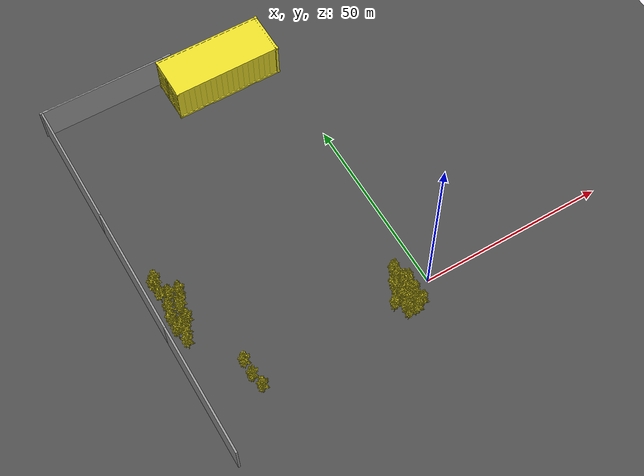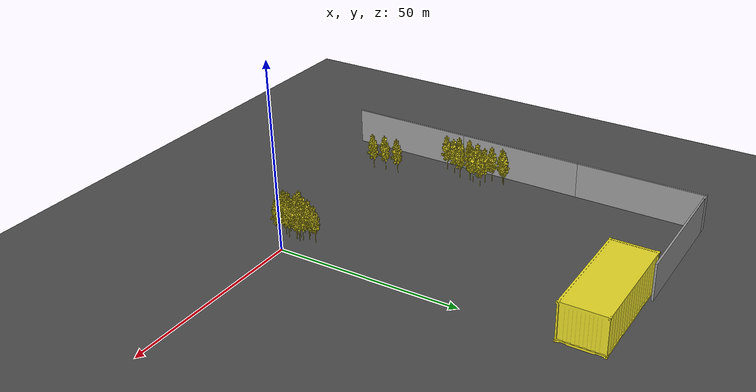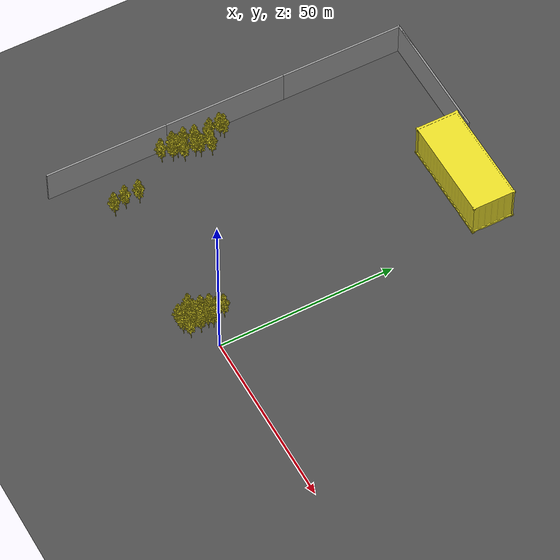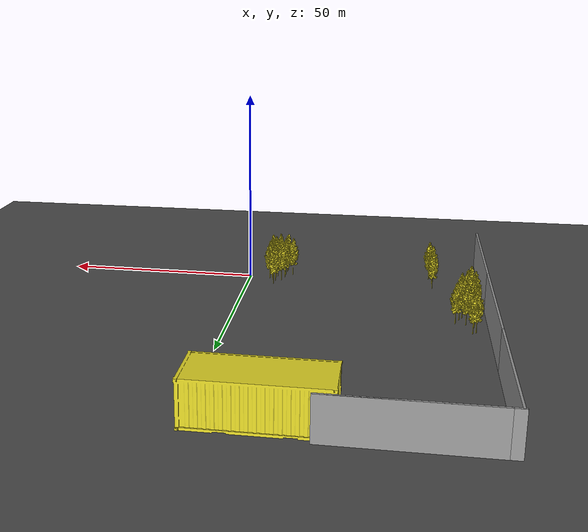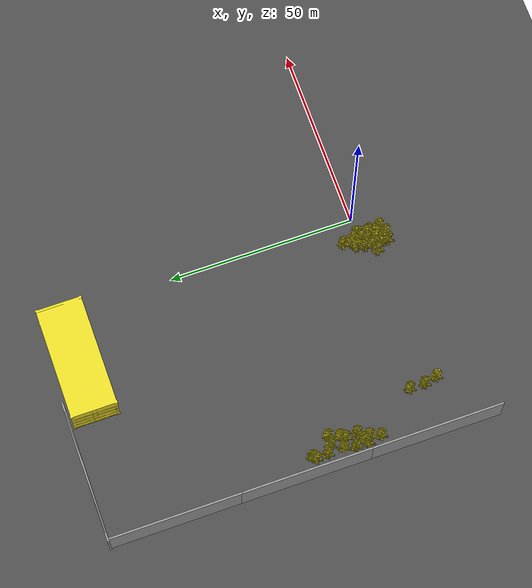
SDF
<sdf version="1.6">
 <world name="default">
  <model name="ground_plane">
   <static>1</static>
   <link name="link">
    <collision name="collision">
     <geometry><plane><normal>0 0 1</normal><size>40000 40000</size></plane></geometry>
     <surface>
      <contact><collide_bitmask>65535</collide_bitmask></contact>
      <friction><ode><mu>100</mu><mu2>50</mu2></ode></friction>
     </surface>
    </collision>
    <visual name="visual">
     <cast_shadows>0</cast_shadows>
     <geometry><plane><normal>0 0 1</normal><size>130 180</size></plane></geometry>
     <material>
      <script><uri>file://media/materials/scripts/gazebo.material</uri><name>Gazebo/Road</name></script>
     </material>
    </visual>
   </link>
  </model>
  <model name="tree0">
   <link name="tree_base">
    <inertial>
     <mass>50</mass>
     <inertia>
      <ixx>6.71748</ixx>
      <ixy>2.148e-05</ixy>
      <ixz>-2.4e-07</ixz>
      <iyy>6.71748</iyy>
      <iyz>-0.171807</iyz>
      <izz>6.71748</izz>
     </inertia>
    </inertial>
    <collision name="tree_base_fixed_joint_lump__collision_collision">
     <geometry><mesh><scale>0.4 0.4 0.6</scale><uri>model://tree/meshes/tree_25k_mesh.dae</uri></mesh></geometry>
    </collision>
    <visual name="tree_base_visual">
     <geometry><mesh><scale>0.4 0.4 0.6</scale><uri>model://tree/meshes/tree_25k_mesh.dae</uri></mesh></geometry>
     <material>
      <script><name>Gazebo/Yellow</name><uri>file://media/materials/scripts/gazebo.material</uri></script>
     </material>
    </visual>
   </link>
   <joint name="joint_tree_base" type="fixed"><child>tree_base</child><parent>world</parent></joint>
   <static>1</static>
   <pose>-11.5 1 0 0 -0 0</pose>
  </model>
  <model name="wall1_clone_clone">
   <link name="link">
    <enable_wind>1</enable_wind>
    <inertial>
     <mass>1</mass>
     <inertia><ixx>1</ixx><ixy>0</ixy><ixz>0</ixz><iyy>1</iyy><iyz>0</iyz><izz>1</izz></inertia>
    </inertial>
    <visual name="visual">
     <cast_shadows>0</cast_shadows>
     <geometry><box><size>35 0.5 10</size></box></geometry>
     <material>
      <script>
       <uri>model://grey_wall/materials/scripts</uri>
       <uri>model://grey_wall/materials/textures</uri>
       <name>vrc/grey_wall</name>
      </script>
      <shader type="pixel"><normal_map>__default__</normal_map></shader>
      <ambient>1 1 1 1</ambient>
      <diffuse>1 1 1 1</diffuse>
      <specular>0 0 0 1</specular>
      <emissive>0 0 0 1</emissive>
     </material>
    </visual>
    <collision name="collision">
     <geometry><box><size>35 0.5 10</size></box></geometry>
     <surface>
      <friction>
       <ode><mu>1</mu><mu2>1</mu2><fdir1>0 0 0</fdir1><slip1>0</slip1><slip2>0</slip2></ode>
       <torsional>
        <coefficient>1</coefficient>
        <patch_radius>0</patch_radius>
        <surface_radius>0</surface_radius>
        <use_patch_radius>1</use_patch_radius>
        <ode><slip>0</slip></ode>
       </torsional>
      </friction>
      <bounce><restitution_coefficient>0</restitution_coefficient><threshold>1e+06</threshold></bounce>
      <contact>
       <collide_without_contact>0</collide_without_contact>
       <collide_without_contact_bitmask>1</collide_without_contact_bitmask>
       <collide_bitmask>1</collide_bitmask>
       <ode>
        <soft_cfm>0</soft_cfm>
        <soft_erp>0.2</soft_erp>
        <kp>1e+13</kp>
        <kd>1</kd>
        <max_vel>0.01</max_vel>
        <min_depth>0</min_depth>
       </ode>
       <bullet>
        <split_impulse>1</split_impulse>
        <split_impulse_penetration_threshold>-0.01</split_impulse_penetration_threshold>
        <soft_cfm>0</soft_cfm>
        <soft_erp>0.2</soft_erp>
        <kp>1e+13</kp>
        <kd>1</kd>
       </bullet>
      </contact>
     </surface>
    </collision>
   </link>
   <static>1</static>
   <pose>-45.0044 86.7474 5 0 -0 0</pose>
  </model>
  <model name="wall1_clone_clone_0">
   <link name="link">
    <enable_wind>1</enable_wind>
    <inertial>
     <mass>1</mass>
     <inertia><ixx>1</ixx><ixy>0</ixy><ixz>0</ixz><iyy>1</iyy><iyz>0</iyz><izz>1</izz></inertia>
    </inertial>
    <visual name="visual">
     <cast_shadows>0</cast_shadows>
     <geometry><box><size>35 0.5 10</size></box></geometry>
     <material>
      <script>
       <uri>model://grey_wall/materials/scripts</uri>
       <uri>model://grey_wall/materials/textures</uri>
       <name>vrc/grey_wall</name>
      </script>
      <shader type="pixel"><normal_map>__default__</normal_map></shader>
      <ambient>1 1 1 1</ambient>
      <diffuse>1 1 1 1</diffuse>
      <specular>0 0 0 1</specular>
      <emissive>0 0 0 1</emissive>
     </material>
    </visual>
    <collision name="collision">
     <geometry><box><size>35 0.5 10</size></box></geometry>
     <surface>
      <friction>
       <ode><mu>1</mu><mu2>1</mu2><fdir1>0 0 0</fdir1><slip1>0</slip1><slip2>0</slip2></ode>
       <torsional>
        <coefficient>1</coefficient>
        <patch_radius>0</patch_radius>
        <surface_radius>0</surface_radius>
        <use_patch_radius>1</use_patch_radius>
        <ode><slip>0</slip></ode>
       </torsional>
      </friction>
      <bounce><restitution_coefficient>0</restitution_coefficient><threshold>1e+06</threshold></bounce>
      <contact>
       <collide_without_contact>0</collide_without_contact>
       <collide_without_contact_bitmask>1</collide_without_contact_bitmask>
       <collide_bitmask>1</collide_bitmask>
       <ode>
        <soft_cfm>0</soft_cfm>
        <soft_erp>0.2</soft_erp>
        <kp>1e+13</kp>
        <kd>1</kd>
        <max_vel>0.01</max_vel>
        <min_depth>0</min_depth>
       </ode>
       <bullet>
        <split_impulse>1</split_impulse>
        <split_impulse_penetration_threshold>-0.01</split_impulse_penetration_threshold>
        <soft_cfm>0</soft_cfm>
        <soft_erp>0.2</soft_erp>
        <kp>1e+13</kp>
        <kd>1</kd>
       </bullet>
      </contact>
     </surface>
    </collision>
   </link>
   <static>1</static>
   <pose>-61.9101 69.2935 5 0 0 -1.57191</pose>
  </model>
  <model name="wall1_clone_clone_0_clone">
   <link name="link">
    <enable_wind>1</enable_wind>
    <inertial>
     <mass>1</mass>
     <inertia><ixx>1</ixx><ixy>0</ixy><ixz>0</ixz><iyy>1</iyy><iyz>0</iyz><izz>1</izz></inertia>
    </inertial>
    <visual name="visual">
     <cast_shadows>0</cast_shadows>
     <geometry><box><size>35 0.5 10</size></box></geometry>
     <material>
      <script>
       <uri>model://grey_wall/materials/scripts</uri>
       <uri>model://grey_wall/materials/textures</uri>
       <name>vrc/grey_wall</name>
      </script>
      <shader type="pixel"><normal_map>__default__</normal_map></shader>
      <ambient>1 1 1 1</ambient>
      <diffuse>1 1 1 1</diffuse>
      <specular>0 0 0 1</specular>
      <emissive>0 0 0 1</emissive>
     </material>
    </visual>
    <collision name="collision">
     <geometry><box><size>35 0.5 10</size></box></geometry>
     <surface>
      <friction>
       <ode><mu>1</mu><mu2>1</mu2><fdir1>0 0 0</fdir1><slip1>0</slip1><slip2>0</slip2></ode>
       <torsional>
        <coefficient>1</coefficient>
        <patch_radius>0</patch_radius>
        <surface_radius>0</surface_radius>
        <use_patch_radius>1</use_patch_radius>
        <ode><slip>0</slip></ode>
       </torsional>
      </friction>
      <bounce><restitution_coefficient>0</restitution_coefficient><threshold>1e+06</threshold></bounce>
      <contact>
       <collide_without_contact>0</collide_without_contact>
       <collide_without_contact_bitmask>1</collide_without_contact_bitmask>
       <collide_bitmask>1</collide_bitmask>
       <ode>
        <soft_cfm>0</soft_cfm>
        <soft_erp>0.2</soft_erp>
        <kp>1e+13</kp>
        <kd>1</kd>
        <max_vel>0.01</max_vel>
        <min_depth>0</min_depth>
       </ode>
       <bullet>
        <split_impulse>1</split_impulse>
        <split_impulse_penetration_threshold>-0.01</split_impulse_penetration_threshold>
        <soft_cfm>0</soft_cfm>
        <soft_erp>0.2</soft_erp>
        <kp>1e+13</kp>
        <kd>1</kd>
       </bullet>
      </contact>
     </surface>
    </collision>
   </link>
   <static>1</static>
   <pose>-61.9495 34.6526 5 0 0 -1.57191</pose>
  </model>
  <model name="wall1_clone_clone_0_clone_0">
   <link name="link">
    <enable_wind>1</enable_wind>
    <inertial>
     <mass>1</mass>
     <inertia><ixx>1</ixx><ixy>0</ixy><ixz>0</ixz><iyy>1</iyy><iyz>0</iyz><izz>1</izz></inertia>
    </inertial>
    <visual name="visual">
     <cast_shadows>0</cast_shadows>
     <geometry><box><size>35 0.5 10</size></box></geometry>
     <material>
      <script>
       <uri>model://grey_wall/materials/scripts</uri>
       <uri>model://grey_wall/materials/textures</uri>
       <name>vrc/grey_wall</name>
      </script>
      <shader type="pixel"><normal_map>__default__</normal_map></shader>
      <ambient>1 1 1 1</ambient>
      <diffuse>1 1 1 1</diffuse>
      <specular>0 0 0 1</specular>
      <emissive>0 0 0 1</emissive>
     </material>
    </visual>
    <collision name="collision">
     <geometry><box><size>35 0.5 10</size></box></geometry>
     <surface>
      <friction>
       <ode><mu>1</mu><mu2>1</mu2><fdir1>0 0 0</fdir1><slip1>0</slip1><slip2>0</slip2></ode>
       <torsional>
        <coefficient>1</coefficient>
        <patch_radius>0</patch_radius>
        <surface_radius>0</surface_radius>
        <use_patch_radius>1</use_patch_radius>
        <ode><slip>0</slip></ode>
       </torsional>
      </friction>
      <bounce><restitution_coefficient>0</restitution_coefficient><threshold>1e+06</threshold></bounce>
      <contact>
       <collide_without_contact>0</collide_without_contact>
       <collide_without_contact_bitmask>1</collide_without_contact_bitmask>
       <collide_bitmask>1</collide_bitmask>
       <ode>
        <soft_cfm>0</soft_cfm>
        <soft_erp>0.2</soft_erp>
        <kp>1e+13</kp>
        <kd>1</kd>
        <max_vel>0.01</max_vel>
        <min_depth>0</min_depth>
       </ode>
       <bullet>
        <split_impulse>1</split_impulse>
        <split_impulse_penetration_threshold>-0.01</split_impulse_penetration_threshold>
        <soft_cfm>0</soft_cfm>
        <soft_erp>0.2</soft_erp>
        <kp>1e+13</kp>
        <kd>1</kd>
       </bullet>
      </contact>
     </surface>
    </collision>
   </link>
   <static>1</static>
   <pose>-61.997 -0.05092 5 0 0 -1.57191</pose>
  </model>
  <model name="wall1_clone_clone_clone_3">
   <link name="link">
    <enable_wind>1</enable_wind>
    <inertial>
     <mass>1</mass>
     <inertia><ixx>1</ixx><ixy>0</ixy><ixz>0</ixz><iyy>1</iyy><iyz>0</iyz><izz>1</izz></inertia>
    </inertial>
    <visual name="visual">
     <cast_shadows>0</cast_shadows>
     <geometry><box><size>35 0.5 10</size></box></geometry>
     <material>
      <script>
       <uri>model://grey_wall/materials/scripts</uri>
       <uri>model://grey_wall/materials/textures</uri>
       <name>vrc/grey_wall</name>
      </script>
      <shader type="pixel"><normal_map>__default__</normal_map></shader>
      <ambient>1 1 1 1</ambient>
      <diffuse>1 1 1 1</diffuse>
      <specular>0 0 0 1</specular>
      <emissive>0 0 0 1</emissive>
     </material>
    </visual>
    <collision name="collision">
     <geometry><box><size>35 0.5 10</size></box></geometry>
     <surface>
      <friction>
       <ode><mu>1</mu><mu2>1</mu2><fdir1>0 0 0</fdir1><slip1>0</slip1><slip2>0</slip2></ode>
       <torsional>
        <coefficient>1</coefficient>
        <patch_radius>0</patch_radius>
        <surface_radius>0</surface_radius>
        <use_patch_radius>1</use_patch_radius>
        <ode><slip>0</slip></ode>
       </torsional>
      </friction>
      <bounce><restitution_coefficient>0</restitution_coefficient><threshold>1e+06</threshold></bounce>
      <contact>
       <collide_without_contact>0</collide_without_contact>
       <collide_without_contact_bitmask>1</collide_without_contact_bitmask>
       <collide_bitmask>1</collide_bitmask>
       <ode>
        <soft_cfm>0</soft_cfm>
        <soft_erp>0.2</soft_erp>
        <kp>1e+13</kp>
        <kd>1</kd>
        <max_vel>0.01</max_vel>
        <min_depth>0</min_depth>
       </ode>
       <bullet>
        <split_impulse>1</split_impulse>
        <split_impulse_penetration_threshold>-0.01</split_impulse_penetration_threshold>
        <soft_cfm>0</soft_cfm>
        <soft_erp>0.2</soft_erp>
        <kp>1e+13</kp>
        <kd>1</kd>
       </bullet>
      </contact>
     </surface>
    </collision>
   </link>
   <static>1</static>
   <pose>-42.6219 86.7691 5 0 -0 0</pose>
  </model>
  <model name="tree0_clone">
   <link name="tree_base">
    <inertial>
     <mass>50</mass>
     <inertia>
      <ixx>6.71748</ixx>
      <ixy>2.148e-05</ixy>
      <ixz>-2.4e-07</ixz>
      <iyy>6.71748</iyy>
      <iyz>-0.171807</iyz>
      <izz>6.71748</izz>
     </inertia>
    </inertial>
    <collision name="tree_base_fixed_joint_lump__collision_collision">
     <geometry><mesh><scale>0.4 0.4 0.6</scale><uri>model://tree/meshes/tree_25k_mesh.dae</uri></mesh></geometry>
    </collision>
    <visual name="tree_base_visual">
     <geometry><mesh><scale>0.4 0.4 0.6</scale><uri>model://tree/meshes/tree_25k_mesh.dae</uri></mesh></geometry>
     <material>
      <script><name>Gazebo/Yellow</name><uri>file://media/materials/scripts/gazebo.material</uri></script>
     </material>
    </visual>
   </link>
   <joint name="joint_tree_base" type="fixed"><child>tree_base</child><parent>world</parent></joint>
   <static>1</static>
   <pose>-8.08772 0.204282 0 0 -0 0</pose>
  </model>
  <model name="tree0_clone_clone_clone_4">
   <link name="tree_base">
    <inertial>
     <mass>50</mass>
     <inertia>
      <ixx>6.71748</ixx>
      <ixy>2.148e-05</ixy>
      <ixz>-2.4e-07</ixz>
      <iyy>6.71748</iyy>
      <iyz>-0.171807</iyz>
      <izz>6.71748</izz>
     </inertia>
    </inertial>
    <collision name="tree_base_fixed_joint_lump__collision_collision">
     <geometry><mesh><scale>0.4 0.4 0.6</scale><uri>model://tree/meshes/tree_25k_mesh.dae</uri></mesh></geometry>
    </collision>
    <visual name="tree_base_visual">
     <geometry><mesh><scale>0.4 0.4 0.6</scale><uri>model://tree/meshes/tree_25k_mesh.dae</uri></mesh></geometry>
     <material>
      <script><name>Gazebo/Yellow</name><uri>file://media/materials/scripts/gazebo.material</uri></script>
     </material>
    </visual>
   </link>
   <joint name="joint_tree_base" type="fixed"><child>tree_base</child><parent>world</parent></joint>
   <static>1</static>
   <pose>-5.56383 5.00842 0 0 -0 0</pose>
  </model>
  <model name="container121_clone">
   <link name="container_base">
    <pose>0 0 0.01 0 -0 0</pose>
    <inertial>
     <mass>500</mass>
     <inertia>
      <ixx>6.71748</ixx>
      <ixy>2.148e-05</ixy>
      <ixz>-2.4e-07</ixz>
      <iyy>6.71748</iyy>
      <iyz>-0.171807</iyz>
      <izz>6.71748</izz>
     </inertia>
    </inertial>
    <collision name="container_base_fixed_joint_lump__collision_collision">
     <geometry>
      <mesh><scale>5 5 4</scale><uri>model://container/meshes/container_mesh_1000.dae</uri></mesh>
     </geometry>
    </collision>
    <visual name="container_base_visual">
     <geometry>
      <mesh><scale>5 5 4</scale><uri>model://container/meshes/container_mesh_1000.dae</uri></mesh>
     </geometry>
     <material>
      <script><name>Gazebo/Yellow</name><uri>file://media/materials/scripts/gazebo.material</uri></script>
     </material>
    </visual>
   </link>
   <joint name="joint_container_base" type="fixed"><child>container_base</child><parent>world</parent></joint>
   <static>1</static>
   <pose>-29.8689 73.6374 0 0 -0 0</pose>
  </model>
  <model name="tree0_clone_clone_clone_1_clone_4_clone_5">
   <link name="tree_base">
    <inertial>
     <mass>50</mass>
     <inertia>
      <ixx>6.71748</ixx>
      <ixy>2.148e-05</ixy>
      <ixz>-2.4e-07</ixz>
      <iyy>6.71748</iyy>
      <iyz>-0.171807</iyz>
      <izz>6.71748</izz>
     </inertia>
    </inertial>
    <collision name="tree_base_fixed_joint_lump__collision_collision">
     <geometry><mesh><scale>0.4 0.4 0.6</scale><uri>model://tree/meshes/tree_25k_mesh.dae</uri></mesh></geometry>
    </collision>
    <visual name="tree_base_visual">
     <geometry><mesh><scale>0.4 0.4 0.6</scale><uri>model://tree/meshes/tree_25k_mesh.dae</uri></mesh></geometry>
     <material>
      <script><name>Gazebo/Yellow</name><uri>file://media/materials/scripts/gazebo.material</uri></script>
     </material>
    </visual>
   </link>
   <joint name="joint_tree_base" type="fixed"><child>tree_base</child><parent>world</parent></joint>
   <static>1</static>
   <pose>-58.3793 17.5772 0 0 -0 0</pose>
  </model>
  <model name="tree0_clone_clone_clone_1_clone_4_clone_6">
   <link name="tree_base">
    <inertial>
     <mass>50</mass>
     <inertia>
      <ixx>6.71748</ixx>
      <ixy>2.148e-05</ixy>
      <ixz>-2.4e-07</ixz>
      <iyy>6.71748</iyy>
      <iyz>-0.171807</iyz>
      <izz>6.71748</izz>
     </inertia>
    </inertial>
    <collision name="tree_base_fixed_joint_lump__collision_collision">
     <geometry><mesh><scale>0.4 0.4 0.6</scale><uri>model://tree/meshes/tree_25k_mesh.dae</uri></mesh></geometry>
    </collision>
    <visual name="tree_base_visual">
     <geometry><mesh><scale>0.4 0.4 0.6</scale><uri>model://tree/meshes/tree_25k_mesh.dae</uri></mesh></geometry>
     <material>
      <script><name>Gazebo/Yellow</name><uri>file://media/materials/scripts/gazebo.material</uri></script>
     </material>
    </visual>
   </link>
   <joint name="joint_tree_base" type="fixed"><child>tree_base</child><parent>world</parent></joint>
   <static>1</static>
   <pose>-58.319 27.4563 0 0 -0 0</pose>
  </model>
  <model name="tree0_clone_clone_clone_1_clone_4_clone_7">
   <link name="tree_base">
    <inertial>
     <mass>50</mass>
     <inertia>
      <ixx>6.71748</ixx>
      <ixy>2.148e-05</ixy>
      <ixz>-2.4e-07</ixz>
      <iyy>6.71748</iyy>
      <iyz>-0.171807</iyz>
      <izz>6.71748</izz>
     </inertia>
    </inertial>
    <collision name="tree_base_fixed_joint_lump__collision_collision">
     <geometry><mesh><scale>0.4 0.4 0.6</scale><uri>model://tree/meshes/tree_25k_mesh.dae</uri></mesh></geometry>
    </collision>
    <visual name="tree_base_visual">
     <geometry><mesh><scale>0.4 0.4 0.6</scale><uri>model://tree/meshes/tree_25k_mesh.dae</uri></mesh></geometry>
     <material>
      <script><name>Gazebo/Yellow</name><uri>file://media/materials/scripts/gazebo.material</uri></script>
     </material>
    </visual>
   </link>
   <joint name="joint_tree_base" type="fixed"><child>tree_base</child><parent>world</parent></joint>
   <static>1</static>
   <pose>-55.7814 23.0274 0 0 -0 0</pose>
  </model>
  <model name="tree0_clone_clone_clone_1_clone_4_clone_8">
   <link name="tree_base">
    <inertial>
     <mass>50</mass>
     <inertia>
      <ixx>6.71748</ixx>
      <ixy>2.148e-05</ixy>
      <ixz>-2.4e-07</ixz>
      <iyy>6.71748</iyy>
      <iyz>-0.171807</iyz>
      <izz>6.71748</izz>
     </inertia>
    </inertial>
    <collision name="tree_base_fixed_joint_lump__collision_collision">
     <geometry><mesh><scale>0.4 0.4 0.6</scale><uri>model://tree/meshes/tree_25k_mesh.dae</uri></mesh></geometry>
    </collision>
    <visual name="tree_base_visual">
     <geometry><mesh><scale>0.4 0.4 0.6</scale><uri>model://tree/meshes/tree_25k_mesh.dae</uri></mesh></geometry>
     <material>
      <script><name>Gazebo/Yellow</name><uri>file://media/materials/scripts/gazebo.material</uri></script>
     </material>
    </visual>
   </link>
   <joint name="joint_tree_base" type="fixed"><child>tree_base</child><parent>world</parent></joint>
   <static>1</static>
   <pose>-54.1283 30.2584 0 0 -0 0</pose>
  </model>
  <model name="tree0_clone_clone_clone_1_clone_4_clone_9">
   <link name="tree_base">
    <inertial>
     <mass>50</mass>
     <inertia>
      <ixx>6.71748</ixx>
      <ixy>2.148e-05</ixy>
      <ixz>-2.4e-07</ixz>
      <iyy>6.71748</iyy>
      <iyz>-0.171807</iyz>
      <izz>6.71748</izz>
     </inertia>
    </inertial>
    <collision name="tree_base_fixed_joint_lump__collision_collision">
     <geometry><mesh><scale>0.4 0.4 0.6</scale><uri>model://tree/meshes/tree_25k_mesh.dae</uri></mesh></geometry>
    </collision>
    <visual name="tree_base_visual">
     <geometry><mesh><scale>0.4 0.4 0.6</scale><uri>model://tree/meshes/tree_25k_mesh.dae</uri></mesh></geometry>
     <material>
      <script><name>Gazebo/Yellow</name><uri>file://media/materials/scripts/gazebo.material</uri></script>
     </material>
    </visual>
   </link>
   <joint name="joint_tree_base" type="fixed"><child>tree_base</child><parent>world</parent></joint>
   <static>1</static>
   <pose>-57.8567 35.7583 0 0 -0 0</pose>
  </model>
  <model name="tree0_clone_clone_clone_1_clone_4_clone_10">
   <link name="tree_base">
    <inertial>
     <mass>50</mass>
     <inertia>
      <ixx>6.71748</ixx>
      <ixy>2.148e-05</ixy>
      <ixz>-2.4e-07</ixz>
      <iyy>6.71748</iyy>
      <iyz>-0.171807</iyz>
      <izz>6.71748</izz>
     </inertia>
    </inertial>
    <collision name="tree_base_fixed_joint_lump__collision_collision">
     <geometry><mesh><scale>0.4 0.4 0.6</scale><uri>model://tree/meshes/tree_25k_mesh.dae</uri></mesh></geometry>
    </collision>
    <visual name="tree_base_visual">
     <geometry><mesh><scale>0.4 0.4 0.6</scale><uri>model://tree/meshes/tree_25k_mesh.dae</uri></mesh></geometry>
     <material>
      <script><name>Gazebo/Yellow</name><uri>file://media/materials/scripts/gazebo.material</uri></script>
     </material>
    </visual>
   </link>
   <joint name="joint_tree_base" type="fixed"><child>tree_base</child><parent>world</parent></joint>
   <static>1</static>
   <pose>-7.0481 8.87909 0 0 -0 0</pose>
  </model>
  <model name="tree0_clone_clone_clone_0_clone_clone">
   <link name="tree_base">
    <inertial>
     <mass>50</mass>
     <inertia>
      <ixx>6.71748</ixx>
      <ixy>2.148e-05</ixy>
      <ixz>-2.4e-07</ixz>
      <iyy>6.71748</iyy>
      <iyz>-0.171807</iyz>
      <izz>6.71748</izz>
     </inertia>
    </inertial>
    <collision name="tree_base_fixed_joint_lump__collision_collision">
     <geometry><mesh><scale>0.4 0.4 0.6</scale><uri>model://tree/meshes/tree_25k_mesh.dae</uri></mesh></geometry>
    </collision>
    <visual name="tree_base_visual">
     <geometry><mesh><scale>0.4 0.4 0.6</scale><uri>model://tree/meshes/tree_25k_mesh.dae</uri></mesh></geometry>
     <material>
      <script><name>Gazebo/Yellow</name><uri>file://media/materials/scripts/gazebo.material</uri></script>
     </material>
    </visual>
   </link>
   <joint name="joint_tree_base" type="fixed"><child>tree_base</child><parent>world</parent></joint>
   <static>1</static>
   <pose>-49.3974 6.45253 0 0 -0 0</pose>
  </model>
  <model name="tree0_clone_clone_clone_0_clone_clone_0">
   <link name="tree_base">
    <inertial>
     <mass>50</mass>
     <inertia>
      <ixx>6.71748</ixx>
      <ixy>2.148e-05</ixy>
      <ixz>-2.4e-07</ixz>
      <iyy>6.71748</iyy>
      <iyz>-0.171807</iyz>
      <izz>6.71748</izz>
     </inertia>
    </inertial>
    <collision name="tree_base_fixed_joint_lump__collision_collision">
     <geometry><mesh><scale>0.4 0.4 0.6</scale><uri>model://tree/meshes/tree_25k_mesh.dae</uri></mesh></geometry>
    </collision>
    <visual name="tree_base_visual">
     <geometry><mesh><scale>0.4 0.4 0.6</scale><uri>model://tree/meshes/tree_25k_mesh.dae</uri></mesh></geometry>
     <material>
      <script><name>Gazebo/Yellow</name><uri>file://media/materials/scripts/gazebo.material</uri></script>
     </material>
    </visual>
   </link>
   <joint name="joint_tree_base" type="fixed"><child>tree_base</child><parent>world</parent></joint>
   <static>1</static>
   <pose>-49.4179 2.45019 0 0 -0 0</pose>
  </model>
  <model name="tree0_clone_clone_clone_0_clone_clone_1">
   <link name="tree_base">
    <inertial>
     <mass>50</mass>
     <inertia>
      <ixx>6.71748</ixx>
      <ixy>2.148e-05</ixy>
      <ixz>-2.4e-07</ixz>
      <iyy>6.71748</iyy>
      <iyz>-0.171807</iyz>
      <izz>6.71748</izz>
     </inertia>
    </inertial>
    <collision name="tree_base_fixed_joint_lump__collision_collision">
     <geometry><mesh><scale>0.4 0.4 0.6</scale><uri>model://tree/meshes/tree_25k_mesh.dae</uri></mesh></geometry>
    </collision>
    <visual name="tree_base_visual">
     <geometry><mesh><scale>0.4 0.4 0.6</scale><uri>model://tree/meshes/tree_25k_mesh.dae</uri></mesh></geometry>
     <material>
      <script><name>Gazebo/Yellow</name><uri>file://media/materials/scripts/gazebo.material</uri></script>
     </material>
    </visual>
   </link>
   <joint name="joint_tree_base" type="fixed"><child>tree_base</child><parent>world</parent></joint>
   <static>1</static>
   <pose>-48.666 -1.01178 0 0 -0 0</pose>
  </model>
  <model name="tree0_clone_1">
   <link name="tree_base">
    <inertial>
     <mass>50</mass>
     <inertia>
      <ixx>6.71748</ixx>
      <ixy>2.148e-05</ixy>
      <ixz>-2.4e-07</ixz>
      <iyy>6.71748</iyy>
      <iyz>-0.171807</iyz>
      <izz>6.71748</izz>
     </inertia>
    </inertial>
    <collision name="tree_base_fixed_joint_lump__collision_collision">
     <geometry><mesh><scale>0.4 0.4 0.6</scale><uri>model://tree/meshes/tree_25k_mesh.dae</uri></mesh></geometry>
    </collision>
    <visual name="tree_base_visual">
     <geometry><mesh><scale>0.4 0.4 0.6</scale><uri>model://tree/meshes/tree_25k_mesh.dae</uri></mesh></geometry>
     <material>
      <script><name>Gazebo/Yellow</name><uri>file://media/materials/scripts/gazebo.material</uri></script>
     </material>
    </visual>
   </link>
   <joint name="joint_tree_base" type="fixed"><child>tree_base</child><parent>world</parent></joint>
   <static>1</static>
   <pose>-9.77325 -2.51959 0 0 -0 0</pose>
  </model>
  <model name="tree0_clone_2">
   <link name="tree_base">
    <inertial>
     <mass>50</mass>
     <inertia>
      <ixx>6.71748</ixx>
      <ixy>2.148e-05</ixy>
      <ixz>-2.4e-07</ixz>
      <iyy>6.71748</iyy>
      <iyz>-0.171807</iyz>
      <izz>6.71748</izz>
     </inertia>
    </inertial>
    <collision name="tree_base_fixed_joint_lump__collision_collision">
     <geometry><mesh><scale>0.4 0.4 0.6</scale><uri>model://tree/meshes/tree_25k_mesh.dae</uri></mesh></geometry>
    </collision>
    <visual name="tree_base_visual">
     <geometry><mesh><scale>0.4 0.4 0.6</scale><uri>model://tree/meshes/tree_25k_mesh.dae</uri></mesh></geometry>
     <material>
      <script><name>Gazebo/Yellow</name><uri>file://media/materials/scripts/gazebo.material</uri></script>
     </material>
    </visual>
   </link>
   <joint name="joint_tree_base" type="fixed"><child>tree_base</child><parent>world</parent></joint>
   <static>1</static>
   <pose>-7.57946 -2.56982 0 0 -0 0</pose>
  </model>
  <model name="tree0_clone_3">
   <link name="tree_base">
    <inertial>
     <mass>50</mass>
     <inertia>
      <ixx>6.71748</ixx>
      <ixy>2.148e-05</ixy>
      <ixz>-2.4e-07</ixz>
      <iyy>6.71748</iyy>
      <iyz>-0.171807</iyz>
      <izz>6.71748</izz>
     </inertia>
    </inertial>
    <collision name="tree_base_fixed_joint_lump__collision_collision">
     <geometry><mesh><scale>0.4 0.4 0.6</scale><uri>model://tree/meshes/tree_25k_mesh.dae</uri></mesh></geometry>
    </collision>
    <visual name="tree_base_visual">
     <geometry><mesh><scale>0.4 0.4 0.6</scale><uri>model://tree/meshes/tree_25k_mesh.dae</uri></mesh></geometry>
     <material>
      <script><name>Gazebo/Yellow</name><uri>file://media/materials/scripts/gazebo.material</uri></script>
     </material>
    </visual>
   </link>
   <joint name="joint_tree_base" type="fixed"><child>tree_base</child><parent>world</parent></joint>
   <static>1</static>
   <pose>-5.53581 -1.4938 0 0 -0 0</pose>
  </model>
  <model name="tree0_clone_4">
   <link name="tree_base">
    <inertial>
     <mass>50</mass>
     <inertia>
      <ixx>6.71748</ixx>
      <ixy>2.148e-05</ixy>
      <ixz>-2.4e-07</ixz>
      <iyy>6.71748</iyy>
      <iyz>-0.171807</iyz>
      <izz>6.71748</izz>
     </inertia>
    </inertial>
    <collision name="tree_base_fixed_joint_lump__collision_collision">
     <geometry><mesh><scale>0.4 0.4 0.6</scale><uri>model://tree/meshes/tree_25k_mesh.dae</uri></mesh></geometry>
    </collision>
    <visual name="tree_base_visual">
     <geometry><mesh><scale>0.4 0.4 0.6</scale><uri>model://tree/meshes/tree_25k_mesh.dae</uri></mesh></geometry>
     <material>
      <script><name>Gazebo/Yellow</name><uri>file://media/materials/scripts/gazebo.material</uri></script>
     </material>
    </visual>
   </link>
   <joint name="joint_tree_base" type="fixed"><child>tree_base</child><parent>world</parent></joint>
   <static>1</static>
   <pose>-9.60694 -1.0583 0 0 -0 0</pose>
  </model>
  <model name="tree0_clone_5">
   <link name="tree_base">
    <inertial>
     <mass>50</mass>
     <inertia>
      <ixx>6.71748</ixx>
      <ixy>2.148e-05</ixy>
      <ixz>-2.4e-07</ixz>
      <iyy>6.71748</iyy>
      <iyz>-0.171807</iyz>
      <izz>6.71748</izz>
     </inertia>
    </inertial>
    <collision name="tree_base_fixed_joint_lump__collision_collision">
     <geometry><mesh><scale>0.4 0.4 0.6</scale><uri>model://tree/meshes/tree_25k_mesh.dae</uri></mesh></geometry>
    </collision>
    <visual name="tree_base_visual">
     <geometry><mesh><scale>0.4 0.4 0.6</scale><uri>model://tree/meshes/tree_25k_mesh.dae</uri></mesh></geometry>
     <material>
      <script><name>Gazebo/Yellow</name><uri>file://media/materials/scripts/gazebo.material</uri></script>
     </material>
    </visual>
   </link>
   <joint name="joint_tree_base" type="fixed"><child>tree_base</child><parent>world</parent></joint>
   <static>1</static>
   <pose>-9.47046 1.37966 0 0 -0 0</pose>
  </model>
  <model name="tree0_clone_6">
   <link name="tree_base">
    <inertial>
     <mass>50</mass>
     <inertia>
      <ixx>6.71748</ixx>
      <ixy>2.148e-05</ixy>
      <ixz>-2.4e-07</ixz>
      <iyy>6.71748</iyy>
      <iyz>-0.171807</iyz>
      <izz>6.71748</izz>
     </inertia>
    </inertial>
    <collision name="tree_base_fixed_joint_lump__collision_collision">
     <geometry><mesh><scale>0.4 0.4 0.6</scale><uri>model://tree/meshes/tree_25k_mesh.dae</uri></mesh></geometry>
    </collision>
    <visual name="tree_base_visual">
     <geometry><mesh><scale>0.4 0.4 0.6</scale><uri>model://tree/meshes/tree_25k_mesh.dae</uri></mesh></geometry>
     <material>
      <script><name>Gazebo/Yellow</name><uri>file://media/materials/scripts/gazebo.material</uri></script>
     </material>
    </visual>
   </link>
   <joint name="joint_tree_base" type="fixed"><child>tree_base</child><parent>world</parent></joint>
   <static>1</static>
   <pose>-6.65964 -0.007236 0 0 -0 0</pose>
  </model>
  <model name="tree0_clone_8">
   <link name="tree_base">
    <inertial>
     <mass>50</mass>
     <inertia>
      <ixx>6.71748</ixx>
      <ixy>2.148e-05</ixy>
      <ixz>-2.4e-07</ixz>
      <iyy>6.71748</iyy>
      <iyz>-0.171807</iyz>
      <izz>6.71748</izz>
     </inertia>
    </inertial>
    <collision name="tree_base_fixed_joint_lump__collision_collision">
     <geometry><mesh><scale>0.4 0.4 0.6</scale><uri>model://tree/meshes/tree_25k_mesh.dae</uri></mesh></geometry>
    </collision>
    <visual name="tree_base_visual">
     <geometry><mesh><scale>0.4 0.4 0.6</scale><uri>model://tree/meshes/tree_25k_mesh.dae</uri></mesh></geometry>
     <material>
      <script><name>Gazebo/Yellow</name><uri>file://media/materials/scripts/gazebo.material</uri></script>
     </material>
    </visual>
   </link>
   <joint name="joint_tree_base" type="fixed"><child>tree_base</child><parent>world</parent></joint>
   <static>1</static>
   <pose>-5.77873 1.5854 0 0 -0 0</pose>
  </model>
  <model name="tree0_clone_9">
   <link name="tree_base">
    <inertial>
     <mass>50</mass>
     <inertia>
      <ixx>6.71748</ixx>
      <ixy>2.148e-05</ixy>
      <ixz>-2.4e-07</ixz>
      <iyy>6.71748</iyy>
      <iyz>-0.171807</iyz>
      <izz>6.71748</izz>
     </inertia>
    </inertial>
    <collision name="tree_base_fixed_joint_lump__collision_collision">
     <geometry><mesh><scale>0.4 0.4 0.6</scale><uri>model://tree/meshes/tree_25k_mesh.dae</uri></mesh></geometry>
    </collision>
    <visual name="tree_base_visual">
     <geometry><mesh><scale>0.4 0.4 0.6</scale><uri>model://tree/meshes/tree_25k_mesh.dae</uri></mesh></geometry>
     <material>
      <script><name>Gazebo/Yellow</name><uri>file://media/materials/scripts/gazebo.material</uri></script>
     </material>
    </visual>
   </link>
   <joint name="joint_tree_base" type="fixed"><child>tree_base</child><parent>world</parent></joint>
   <static>1</static>
   <pose>-7.49225 2.77874 0 0 -0 0</pose>
  </model>
  <model name="tree0_clone_10">
   <link name="tree_base">
    <inertial>
     <mass>50</mass>
     <inertia>
      <ixx>6.71748</ixx>
      <ixy>2.148e-05</ixy>
      <ixz>-2.4e-07</ixz>
      <iyy>6.71748</iyy>
      <iyz>-0.171807</iyz>
      <izz>6.71748</izz>
     </inertia>
    </inertial>
    <collision name="tree_base_fixed_joint_lump__collision_collision">
     <geometry><mesh><scale>0.4 0.4 0.6</scale><uri>model://tree/meshes/tree_25k_mesh.dae</uri></mesh></geometry>
    </collision>
    <visual name="tree_base_visual">
     <geometry><mesh><scale>0.4 0.4 0.6</scale><uri>model://tree/meshes/tree_25k_mesh.dae</uri></mesh></geometry>
     <material>
      <script><name>Gazebo/Yellow</name><uri>file://media/materials/scripts/gazebo.material</uri></script>
     </material>
    </visual>
   </link>
   <joint name="joint_tree_base" type="fixed"><child>tree_base</child><parent>world</parent></joint>
   <static>1</static>
   <pose>-9.53012 3.55823 0 0 -0 0</pose>
  </model>
  <model name="tree0_clone_11">
   <link name="tree_base">
    <inertial>
     <mass>50</mass>
     <inertia>
      <ixx>6.71748</ixx>
      <ixy>2.148e-05</ixy>
      <ixz>-2.4e-07</ixz>
      <iyy>6.71748</iyy>
      <iyz>-0.171807</iyz>
      <izz>6.71748</izz>
     </inertia>
    </inertial>
    <collision name="tree_base_fixed_joint_lump__collision_collision">
     <geometry><mesh><scale>0.4 0.4 0.6</scale><uri>model://tree/meshes/tree_25k_mesh.dae</uri></mesh></geometry>
    </collision>
    <visual name="tree_base_visual">
     <geometry><mesh><scale>0.4 0.4 0.6</scale><uri>model://tree/meshes/tree_25k_mesh.dae</uri></mesh></geometry>
     <material>
      <script><name>Gazebo/Yellow</name><uri>file://media/materials/scripts/gazebo.material</uri></script>
     </material>
    </visual>
   </link>
   <joint name="joint_tree_base" type="fixed"><child>tree_base</child><parent>world</parent></joint>
   <static>1</static>
   <pose>-7.14311 4.11976 0 0 -0 0</pose>
  </model>
  <model name="tree0_clone_13">
   <link name="tree_base">
    <inertial>
     <mass>50</mass>
     <inertia>
      <ixx>6.71748</ixx>
      <ixy>2.148e-05</ixy>
      <ixz>-2.4e-07</ixz>
      <iyy>6.71748</iyy>
      <iyz>-0.171807</iyz>
      <izz>6.71748</izz>
     </inertia>
    </inertial>
    <collision name="tree_base_fixed_joint_lump__collision_collision">
     <geometry><mesh><scale>0.4 0.4 0.6</scale><uri>model://tree/meshes/tree_25k_mesh.dae</uri></mesh></geometry>
    </collision>
    <visual name="tree_base_visual">
     <geometry><mesh><scale>0.4 0.4 0.6</scale><uri>model://tree/meshes/tree_25k_mesh.dae</uri></mesh></geometry>
     <material>
      <script><name>Gazebo/Yellow</name><uri>file://media/materials/scripts/gazebo.material</uri></script>
     </material>
    </visual>
   </link>
   <joint name="joint_tree_base" type="fixed"><child>tree_base</child><parent>world</parent></joint>
   <static>1</static>
   <pose>-6.41597 5.51046 0 0 -0 0</pose>
  </model>
  <model name="tree0_clone_14">
   <link name="tree_base">
    <inertial>
     <mass>50</mass>
     <inertia>
      <ixx>6.71748</ixx>
      <ixy>2.148e-05</ixy>
      <ixz>-2.4e-07</ixz>
      <iyy>6.71748</iyy>
      <iyz>-0.171807</iyz>
      <izz>6.71748</izz>
     </inertia>
    </inertial>
    <collision name="tree_base_fixed_joint_lump__collision_collision">
     <geometry><mesh><scale>0.4 0.4 0.6</scale><uri>model://tree/meshes/tree_25k_mesh.dae</uri></mesh></geometry>
    </collision>
    <visual name="tree_base_visual">
     <geometry><mesh><scale>0.4 0.4 0.6</scale><uri>model://tree/meshes/tree_25k_mesh.dae</uri></mesh></geometry>
     <material>
      <script><name>Gazebo/Yellow</name><uri>file://media/materials/scripts/gazebo.material</uri></script>
     </material>
    </visual>
   </link>
   <joint name="joint_tree_base" type="fixed"><child>tree_base</child><parent>world</parent></joint>
   <static>1</static>
   <pose>-7.32348 6.76258 0 0 -0 0</pose>
  </model>
  <model name="tree0_clone_15">
   <link name="tree_base">
    <inertial>
     <mass>50</mass>
     <inertia>
      <ixx>6.71748</ixx>
      <ixy>2.148e-05</ixy>
      <ixz>-2.4e-07</ixz>
      <iyy>6.71748</iyy>
      <iyz>-0.171807</iyz>
      <izz>6.71748</izz>
     </inertia>
    </inertial>
    <collision name="tree_base_fixed_joint_lump__collision_collision">
     <geometry><mesh><scale>0.4 0.4 0.6</scale><uri>model://tree/meshes/tree_25k_mesh.dae</uri></mesh></geometry>
    </collision>
    <visual name="tree_base_visual">
     <geometry><mesh><scale>0.4 0.4 0.6</scale><uri>model://tree/meshes/tree_25k_mesh.dae</uri></mesh></geometry>
     <material>
      <script><name>Gazebo/Yellow</name><uri>file://media/materials/scripts/gazebo.material</uri></script>
     </material>
    </visual>
   </link>
   <joint name="joint_tree_base" type="fixed"><child>tree_base</child><parent>world</parent></joint>
   <static>1</static>
   <pose>-8.89065 5.75828 0 0 -0 0</pose>
  </model>
  <model name="tree0_clone_20">
   <link name="tree_base">
    <inertial>
     <mass>50</mass>
     <inertia>
      <ixx>6.71748</ixx>
      <ixy>2.148e-05</ixy>
      <ixz>-2.4e-07</ixz>
      <iyy>6.71748</iyy>
      <iyz>-0.171807</iyz>
      <izz>6.71748</izz>
     </inertia>
    </inertial>
    <collision name="tree_base_fixed_joint_lump__collision_collision">
     <geometry><mesh><scale>0.4 0.4 0.6</scale><uri>model://tree/meshes/tree_25k_mesh.dae</uri></mesh></geometry>
    </collision>
    <visual name="tree_base_visual">
     <geometry><mesh><scale>0.4 0.4 0.6</scale><uri>model://tree/meshes/tree_25k_mesh.dae</uri></mesh></geometry>
     <material>
      <script><name>Gazebo/Yellow</name><uri>file://media/materials/scripts/gazebo.material</uri></script>
     </material>
    </visual>
   </link>
   <joint name="joint_tree_base" type="fixed"><child>tree_base</child><parent>world</parent></joint>
   <static>1</static>
   <pose>-6.06275 3.79252 0 0 -0 0</pose>
  </model>
  <model name="tree0_clone_clone_clone_1_clone_4_clone_3_clone_13">
   <link name="tree_base">
    <inertial>
     <mass>50</mass>
     <inertia>
      <ixx>6.71748</ixx>
      <ixy>2.148e-05</ixy>
      <ixz>-2.4e-07</ixz>
      <iyy>6.71748</iyy>
      <iyz>-0.171807</iyz>
      <izz>6.71748</izz>
     </inertia>
    </inertial>
    <collision name="tree_base_fixed_joint_lump__collision_collision">
     <geometry><mesh><scale>0.4 0.4 0.6</scale><uri>model://tree/meshes/tree_25k_mesh.dae</uri></mesh></geometry>
    </collision>
    <visual name="tree_base_visual">
     <geometry><mesh><scale>0.4 0.4 0.6</scale><uri>model://tree/meshes/tree_25k_mesh.dae</uri></mesh></geometry>
     <material>
      <script><name>Gazebo/Yellow</name><uri>file://media/materials/scripts/gazebo.material</uri></script>
     </material>
    </visual>
   </link>
   <joint name="joint_tree_base" type="fixed"><child>tree_base</child><parent>world</parent></joint>
   <static>1</static>
   <pose>-59.1353 21.2307 0 0 -0 0</pose>
  </model>
  <model name="tree0_clone_clone_clone_1_clone_4_clone_3_clone_14">
   <link name="tree_base">
    <inertial>
     <mass>50</mass>
     <inertia>
      <ixx>6.71748</ixx>
      <ixy>2.148e-05</ixy>
      <ixz>-2.4e-07</ixz>
      <iyy>6.71748</iyy>
      <iyz>-0.171807</iyz>
      <izz>6.71748</izz>
     </inertia>
    </inertial>
    <collision name="tree_base_fixed_joint_lump__collision_collision">
     <geometry><mesh><scale>0.4 0.4 0.6</scale><uri>model://tree/meshes/tree_25k_mesh.dae</uri></mesh></geometry>
    </collision>
    <visual name="tree_base_visual">
     <geometry><mesh><scale>0.4 0.4 0.6</scale><uri>model://tree/meshes/tree_25k_mesh.dae</uri></mesh></geometry>
     <material>
      <script><name>Gazebo/Yellow</name><uri>file://media/materials/scripts/gazebo.material</uri></script>
     </material>
    </visual>
   </link>
   <joint name="joint_tree_base" type="fixed"><child>tree_base</child><parent>world</parent></joint>
   <static>1</static>
   <pose>-59.0241 24.5086 0 0 -0 0</pose>
  </model>
  <model name="tree0_clone_clone_clone_1_clone_4_clone_3_clone_15">
   <link name="tree_base">
    <inertial>
     <mass>50</mass>
     <inertia>
      <ixx>6.71748</ixx>
      <ixy>2.148e-05</ixy>
      <ixz>-2.4e-07</ixz>
      <iyy>6.71748</iyy>
      <iyz>-0.171807</iyz>
      <izz>6.71748</izz>
     </inertia>
    </inertial>
    <collision name="tree_base_fixed_joint_lump__collision_collision">
     <geometry><mesh><scale>0.4 0.4 0.6</scale><uri>model://tree/meshes/tree_25k_mesh.dae</uri></mesh></geometry>
    </collision>
    <visual name="tree_base_visual">
     <geometry><mesh><scale>0.4 0.4 0.6</scale><uri>model://tree/meshes/tree_25k_mesh.dae</uri></mesh></geometry>
     <material>
      <script><name>Gazebo/Yellow</name><uri>file://media/materials/scripts/gazebo.material</uri></script>
     </material>
    </visual>
   </link>
   <joint name="joint_tree_base" type="fixed"><child>tree_base</child><parent>world</parent></joint>
   <static>1</static>
   <pose>-57.7924 21.9839 0 0 -0 0</pose>
  </model>
  <model name="tree0_clone_clone_clone_1_clone_4_clone_3_clone_16">
   <link name="tree_base">
    <inertial>
     <mass>50</mass>
     <inertia>
      <ixx>6.71748</ixx>
      <ixy>2.148e-05</ixy>
      <ixz>-2.4e-07</ixz>
      <iyy>6.71748</iyy>
      <iyz>-0.171807</iyz>
      <izz>6.71748</izz>
     </inertia>
    </inertial>
    <collision name="tree_base_fixed_joint_lump__collision_collision">
     <geometry><mesh><scale>0.4 0.4 0.6</scale><uri>model://tree/meshes/tree_25k_mesh.dae</uri></mesh></geometry>
    </collision>
    <visual name="tree_base_visual">
     <geometry><mesh><scale>0.4 0.4 0.6</scale><uri>model://tree/meshes/tree_25k_mesh.dae</uri></mesh></geometry>
     <material>
      <script><name>Gazebo/Yellow</name><uri>file://media/materials/scripts/gazebo.material</uri></script>
     </material>
    </visual>
   </link>
   <joint name="joint_tree_base" type="fixed"><child>tree_base</child><parent>world</parent></joint>
   <static>1</static>
   <pose>-55.9275 26.253 0 0 -0 0</pose>
  </model>
  <model name="tree0_clone_clone_clone_1_clone_4_clone_3_clone_17">
   <link name="tree_base">
    <inertial>
     <mass>50</mass>
     <inertia>
      <ixx>6.71748</ixx>
      <ixy>2.148e-05</ixy>
      <ixz>-2.4e-07</ixz>
      <iyy>6.71748</iyy>
      <iyz>-0.171807</iyz>
      <izz>6.71748</izz>
     </inertia>
    </inertial>
    <collision name="tree_base_fixed_joint_lump__collision_collision">
     <geometry><mesh><scale>0.4 0.4 0.6</scale><uri>model://tree/meshes/tree_25k_mesh.dae</uri></mesh></geometry>
    </collision>
    <visual name="tree_base_visual">
     <geometry><mesh><scale>0.4 0.4 0.6</scale><uri>model://tree/meshes/tree_25k_mesh.dae</uri></mesh></geometry>
     <material>
      <script><name>Gazebo/Yellow</name><uri>file://media/materials/scripts/gazebo.material</uri></script>
     </material>
    </visual>
   </link>
   <joint name="joint_tree_base" type="fixed"><child>tree_base</child><parent>world</parent></joint>
   <static>1</static>
   <pose>-58.4475 31.841 0 0 -0 0</pose>
  </model>
  <model name="tree0_clone_clone_clone_1_clone_4_clone_3_clone_19">
   <link name="tree_base">
    <inertial>
     <mass>50</mass>
     <inertia>
      <ixx>6.71748</ixx>
      <ixy>2.148e-05</ixy>
      <ixz>-2.4e-07</ixz>
      <iyy>6.71748</iyy>
      <iyz>-0.171807</iyz>
      <izz>6.71748</izz>
     </inertia>
    </inertial>
    <collision name="tree_base_fixed_joint_lump__collision_collision">
     <geometry><mesh><scale>0.4 0.4 0.6</scale><uri>model://tree/meshes/tree_25k_mesh.dae</uri></mesh></geometry>
    </collision>
    <visual name="tree_base_visual">
     <geometry><mesh><scale>0.4 0.4 0.6</scale><uri>model://tree/meshes/tree_25k_mesh.dae</uri></mesh></geometry>
     <material>
      <script><name>Gazebo/Yellow</name><uri>file://media/materials/scripts/gazebo.material</uri></script>
     </material>
    </visual>
   </link>
   <joint name="joint_tree_base" type="fixed"><child>tree_base</child><parent>world</parent></joint>
   <static>1</static>
   <pose>-58.7026 34.9508 0 0 -0 0</pose>
  </model>
  <model name="tree0_clone_clone_clone_1_clone_4_clone_3_clone_20">
   <link name="tree_base">
    <inertial>
     <mass>50</mass>
     <inertia>
      <ixx>6.71748</ixx>
      <ixy>2.148e-05</ixy>
      <ixz>-2.4e-07</ixz>
      <iyy>6.71748</iyy>
      <iyz>-0.171807</iyz>
      <izz>6.71748</izz>
     </inertia>
    </inertial>
    <collision name="tree_base_fixed_joint_lump__collision_collision">
     <geometry><mesh><scale>0.4 0.4 0.6</scale><uri>model://tree/meshes/tree_25k_mesh.dae</uri></mesh></geometry>
    </collision>
    <visual name="tree_base_visual">
     <geometry><mesh><scale>0.4 0.4 0.6</scale><uri>model://tree/meshes/tree_25k_mesh.dae</uri></mesh></geometry>
     <material>
      <script><name>Gazebo/Yellow</name><uri>file://media/materials/scripts/gazebo.material</uri></script>
     </material>
    </visual>
   </link>
   <joint name="joint_tree_base" type="fixed"><child>tree_base</child><parent>world</parent></joint>
   <static>1</static>
   <pose>-56.6278 30.5451 0 0 -0 0</pose>
  </model>
  <model name="tree0_clone_clone_clone_1_clone_4_clone_3_clone_21">
   <link name="tree_base">
    <inertial>
     <mass>50</mass>
     <inertia>
      <ixx>6.71748</ixx>
      <ixy>2.148e-05</ixy>
      <ixz>-2.4e-07</ixz>
      <iyy>6.71748</iyy>
      <iyz>-0.171807</iyz>
      <izz>6.71748</izz>
     </inertia>
    </inertial>
    <collision name="tree_base_fixed_joint_lump__collision_collision">
     <geometry><mesh><scale>0.4 0.4 0.6</scale><uri>model://tree/meshes/tree_25k_mesh.dae</uri></mesh></geometry>
    </collision>
    <visual name="tree_base_visual">
     <geometry><mesh><scale>0.4 0.4 0.6</scale><uri>model://tree/meshes/tree_25k_mesh.dae</uri></mesh></geometry>
     <material>
      <script><name>Gazebo/Yellow</name><uri>file://media/materials/scripts/gazebo.material</uri></script>
     </material>
    </visual>
   </link>
   <joint name="joint_tree_base" type="fixed"><child>tree_base</child><parent>world</parent></joint>
   <static>1</static>
   <pose>-55.1588 27.5072 0 0 -0 0</pose>
  </model>
  <model name="tree0_clone_clone_clone_1_clone_4_clone_3_clone_22">
   <link name="tree_base">
    <inertial>
     <mass>50</mass>
     <inertia>
      <ixx>6.71748</ixx>
      <ixy>2.148e-05</ixy>
      <ixz>-2.4e-07</ixz>
      <iyy>6.71748</iyy>
      <iyz>-0.171807</iyz>
      <izz>6.71748</izz>
     </inertia>
    </inertial>
    <collision name="tree_base_fixed_joint_lump__collision_collision">
     <geometry><mesh><scale>0.4 0.4 0.6</scale><uri>model://tree/meshes/tree_25k_mesh.dae</uri></mesh></geometry>
    </collision>
    <visual name="tree_base_visual">
     <geometry><mesh><scale>0.4 0.4 0.6</scale><uri>model://tree/meshes/tree_25k_mesh.dae</uri></mesh></geometry>
     <material>
      <script><name>Gazebo/Yellow</name><uri>file://media/materials/scripts/gazebo.material</uri></script>
     </material>
    </visual>
   </link>
   <joint name="joint_tree_base" type="fixed"><child>tree_base</child><parent>world</parent></joint>
   <static>1</static>
   <pose>-57.3417 20.3724 0 0 -0 0</pose>
  </model>
 </world>
</sdf>
